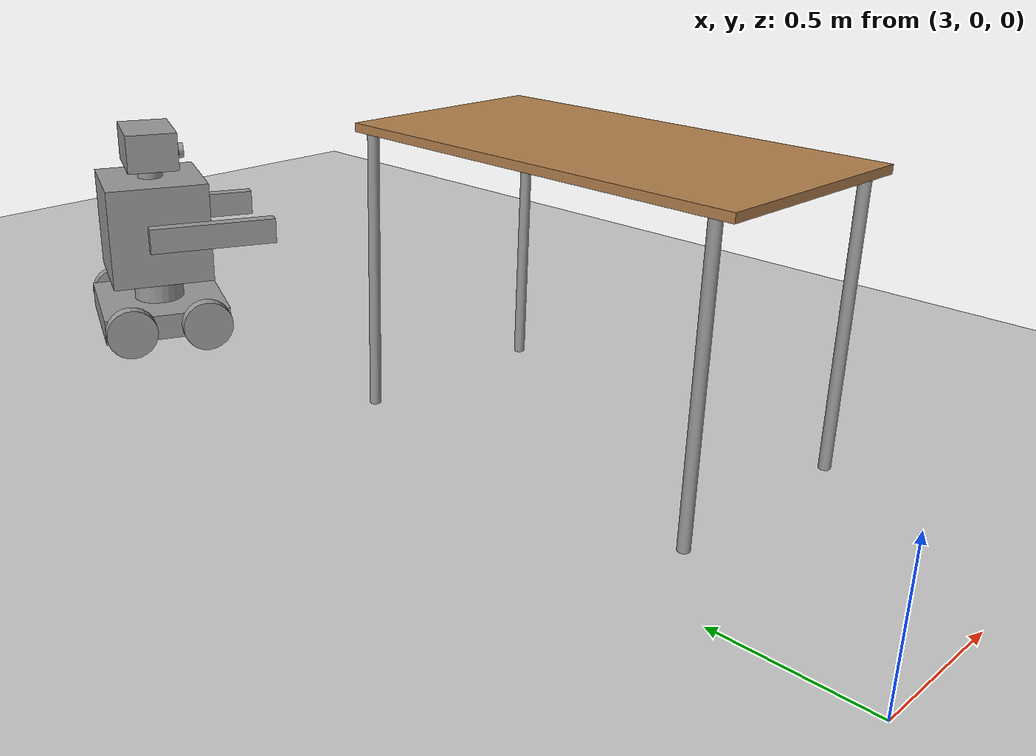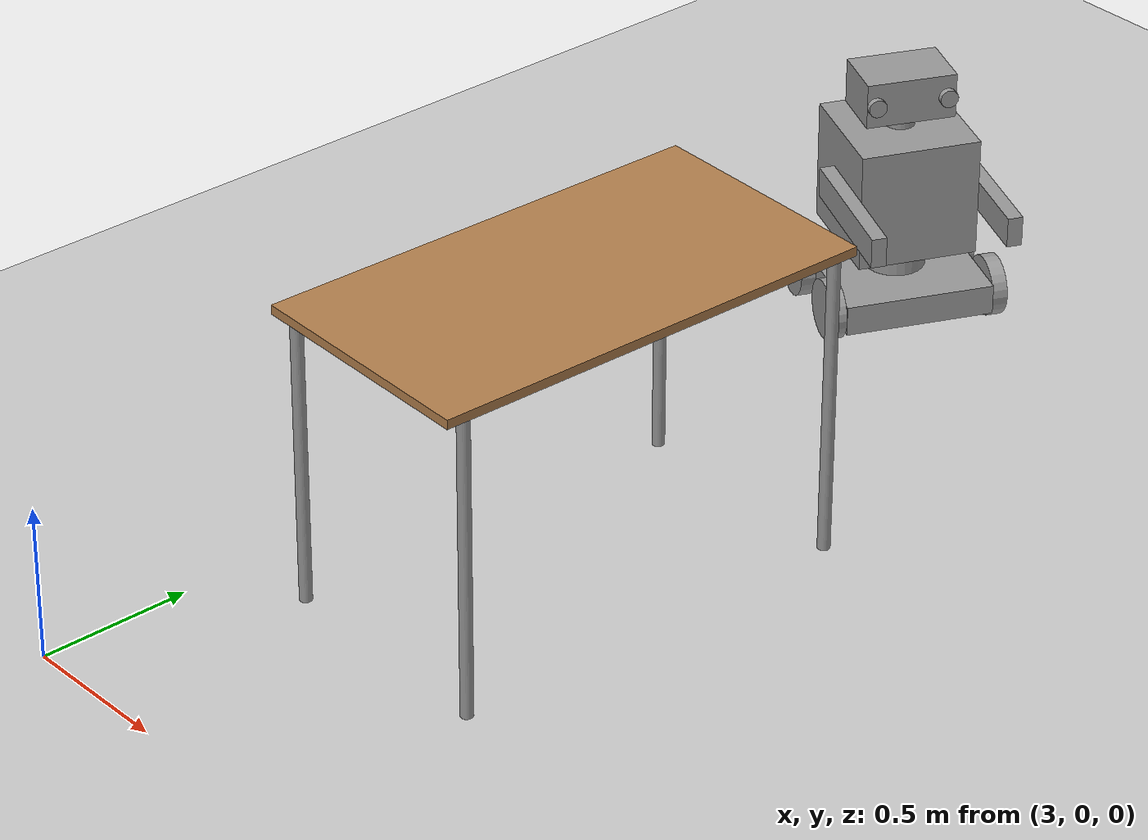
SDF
<sdf version="1.6">
 <world name="default">
  <model name="ground_plane">
   <static>1</static>
   <link name="link">
    <collision name="collision">
     <geometry><plane><normal>0 0 1</normal><size>100 100</size></plane></geometry>
     <surface>
      <contact><collide_bitmask>65535</collide_bitmask></contact>
      <friction><ode><mu>100</mu><mu2>50</mu2></ode></friction>
     </surface>
    </collision>
    <visual name="visual">
     <cast_shadows>0</cast_shadows>
     <geometry><plane><normal>0 0 1</normal><size>100 100</size></plane></geometry>
     <material>
      <script><uri>file://media/materials/scripts/gazebo.material</uri><name>Gazebo/Grey</name></script>
     </material>
    </visual>
   </link>
  </model>
  <model name="table">
   <static>1</static>
   <link name="link">
    <collision name="surface">
     <pose>0 0 1 0 -0 0</pose>
     <geometry><box><size>1.5 0.8 0.03</size></box></geometry>
     <surface><friction><ode><mu>0.6</mu><mu2>0.6</mu2></ode></friction></surface>
    </collision>
    <visual name="visual1">
     <pose>0 0 1 0 -0 0</pose>
     <geometry><box><size>1.5 0.8 0.03</size></box></geometry>
     <material>
      <script><uri>file://media/materials/scripts/gazebo.material</uri><name>Gazebo/Wood</name></script>
     </material>
    </visual>
    <collision name="front_left_leg">
     <pose>0.68 0.38 0.5 0 -0 0</pose>
     <geometry><cylinder><radius>0.02</radius><length>1</length></cylinder></geometry>
    </collision>
    <visual name="front_left_leg">
     <pose>0.68 0.38 0.5 0 -0 0</pose>
     <geometry><cylinder><radius>0.02</radius><length>1</length></cylinder></geometry>
     <material>
      <script><uri>file://media/materials/scripts/gazebo.material</uri><name>Gazebo/Grey</name></script>
     </material>
    </visual>
    <collision name="front_right_leg">
     <pose>0.68 -0.38 0.5 0 -0 0</pose>
     <geometry><cylinder><radius>0.02</radius><length>1</length></cylinder></geometry>
    </collision>
    <visual name="front_right_leg">
     <pose>0.68 -0.38 0.5 0 -0 0</pose>
     <geometry><cylinder><radius>0.02</radius><length>1</length></cylinder></geometry>
     <material>
      <script><uri>file://media/materials/scripts/gazebo.material</uri><name>Gazebo/Grey</name></script>
     </material>
    </visual>
    <collision name="back_right_leg">
     <pose>-0.68 -0.38 0.5 0 -0 0</pose>
     <geometry><cylinder><radius>0.02</radius><length>1</length></cylinder></geometry>
    </collision>
    <visual name="back_right_leg">
     <pose>-0.68 -0.38 0.5 0 -0 0</pose>
     <geometry><cylinder><radius>0.02</radius><length>1</length></cylinder></geometry>
     <material>
      <script><uri>file://media/materials/scripts/gazebo.material</uri><name>Gazebo/Grey</name></script>
     </material>
    </visual>
    <collision name="back_left_leg">
     <pose>-0.68 0.38 0.5 0 -0 0</pose>
     <geometry><cylinder><radius>0.02</radius><length>1</length></cylinder></geometry>
    </collision>
    <visual name="back_left_leg">
     <pose>-0.68 0.38 0.5 0 -0 0</pose>
     <geometry><cylinder><radius>0.02</radius><length>1</length></cylinder></geometry>
     <material>
      <script><uri>file://media/materials/scripts/gazebo.material</uri><name>Gazebo/Grey</name></script>
     </material>
    </visual>
   </link>
   <pose>3.65777 1.42031 0.001054 -0.004408 -9.2e-05 -1.59161</pose>
  </model>
  <model name="static_robot">
   <link name="link_0">
    <inertial>
     <mass>1</mass>
     <inertia>
      <ixx>0.166667</ixx>
      <ixy>0</ixy>
      <ixz>0</ixz>
      <iyy>0.166667</iyy>
      <iyz>0</iyz>
      <izz>0.166667</izz>
     </inertia>
    </inertial>
    <pose>0.002857 0.01 -0.27 0 -0 0</pose>
    <visual name="visual">
     <geometry><box><size>0.5 0.5 0.1</size></box></geometry>
     <material>
      <lighting>1</lighting>
      <script><uri>file://media/materials/scripts/gazebo.material</uri><name>Gazebo/Grey</name></script>
      <shader type="pixel"><normal_map>__default__</normal_map></shader>
      <ambient>0.3 0.3 0.3 1</ambient>
      <diffuse>0.7 0.7 0.7 1</diffuse>
      <specular>0.01 0.01 0.01 1</specular>
      <emissive>0 0 0 1</emissive>
     </material>
    </visual>
    <collision name="collision">
     <geometry><box><size>0.5 0.5 0.1</size></box></geometry>
     <surface>
      <friction>
       <ode><mu>1</mu><mu2>1</mu2><fdir1>0 0 0</fdir1><slip1>0</slip1><slip2>0</slip2></ode>
       <torsional>
        <coefficient>1</coefficient>
        <patch_radius>0</patch_radius>
        <surface_radius>0</surface_radius>
        <use_patch_radius>1</use_patch_radius>
        <ode><slip>0</slip></ode>
       </torsional>
      </friction>
      <bounce><restitution_coefficient>0</restitution_coefficient><threshold>1e+06</threshold></bounce>
      <contact>
       <collide_without_contact>0</collide_without_contact>
       <collide_without_contact_bitmask>1</collide_without_contact_bitmask>
       <collide_bitmask>1</collide_bitmask>
       <ode>
        <soft_cfm>0</soft_cfm>
        <soft_erp>0.2</soft_erp>
        <kp>1e+13</kp>
        <kd>1</kd>
        <max_vel>0.01</max_vel>
        <min_depth>0</min_depth>
       </ode>
       <bullet>
        <split_impulse>1</split_impulse>
        <split_impulse_penetration_threshold>-0.01</split_impulse_penetration_threshold>
        <soft_cfm>0</soft_cfm>
        <soft_erp>0.2</soft_erp>
        <kp>1e+13</kp>
        <kd>1</kd>
       </bullet>
      </contact>
     </surface>
    </collision>
   </link>
   <link name="link_0_0">
    <inertial>
     <mass>1</mass>
     <inertia>
      <ixx>0.166667</ixx>
      <ixy>0</ixy>
      <ixz>0</ixz>
      <iyy>0.166667</iyy>
      <iyz>0</iyz>
      <izz>0.166667</izz>
     </inertia>
    </inertial>
    <pose>0.002855 0.009847 0.087784 0.000603 -1.2e-05 0.008466</pose>
    <visual name="visual">
     <geometry><box><size>0.4 0.4 0.4</size></box></geometry>
     <material>
      <lighting>1</lighting>
      <script><uri>file://media/materials/scripts/gazebo.material</uri><name>Gazebo/Grey</name></script>
      <shader type="pixel"><normal_map>__default__</normal_map></shader>
      <ambient>0.3 0.3 0.3 1</ambient>
      <diffuse>0.7 0.7 0.7 1</diffuse>
      <specular>0.01 0.01 0.01 1</specular>
      <emissive>0 0 0 1</emissive>
     </material>
    </visual>
    <collision name="collision">
     <geometry><box><size>0.4 0.4 0.4</size></box></geometry>
     <surface>
      <friction>
       <ode><mu>1</mu><mu2>1</mu2><fdir1>0 0 0</fdir1><slip1>0</slip1><slip2>0</slip2></ode>
       <torsional>
        <coefficient>1</coefficient>
        <patch_radius>0</patch_radius>
        <surface_radius>0</surface_radius>
        <use_patch_radius>1</use_patch_radius>
        <ode><slip>0</slip></ode>
       </torsional>
      </friction>
      <bounce><restitution_coefficient>0</restitution_coefficient><threshold>1e+06</threshold></bounce>
      <contact>
       <collide_without_contact>0</collide_without_contact>
       <collide_without_contact_bitmask>1</collide_without_contact_bitmask>
       <collide_bitmask>1</collide_bitmask>
       <ode>
        <soft_cfm>0</soft_cfm>
        <soft_erp>0.2</soft_erp>
        <kp>1e+13</kp>
        <kd>1</kd>
        <max_vel>0.01</max_vel>
        <min_depth>0</min_depth>
       </ode>
       <bullet>
        <split_impulse>1</split_impulse>
        <split_impulse_penetration_threshold>-0.01</split_impulse_penetration_threshold>
        <soft_cfm>0</soft_cfm>
        <soft_erp>0.2</soft_erp>
        <kp>1e+13</kp>
        <kd>1</kd>
       </bullet>
      </contact>
     </surface>
    </collision>
   </link>
   <link name="link_0_1_clone">
    <inertial>
     <mass>1</mass>
     <inertia>
      <ixx>0.166667</ixx>
      <ixy>0</ixy>
      <ixz>0</ixz>
      <iyy>0.166667</iyy>
      <iyz>0</iyz>
      <izz>0.166667</izz>
     </inertia>
    </inertial>
    <pose>0.002853 0.009846 0.412906 4e-06 -1.2e-05 -0.006466</pose>
    <visual name="visual_0">
     <geometry><box><size>0.2 0.3 0.15</size></box></geometry>
     <material>
      <lighting>1</lighting>
      <script><uri>file://media/materials/scripts/gazebo.material</uri><name>Gazebo/Grey</name></script>
      <shader type="pixel"><normal_map>__default__</normal_map></shader>
      <ambient>0.3 0.3 0.3 1</ambient>
      <diffuse>0.7 0.7 0.7 1</diffuse>
      <specular>0.01 0.01 0.01 1</specular>
      <emissive>0 0 0 1</emissive>
     </material>
    </visual>
    <collision name="collision">
     <geometry><box><size>0.2 0.3 0.15</size></box></geometry>
     <surface>
      <friction>
       <ode><mu>1</mu><mu2>1</mu2><fdir1>0 0 0</fdir1><slip1>0</slip1><slip2>0</slip2></ode>
       <torsional>
        <coefficient>1</coefficient>
        <patch_radius>0</patch_radius>
        <surface_radius>0</surface_radius>
        <use_patch_radius>1</use_patch_radius>
        <ode><slip>0</slip></ode>
       </torsional>
      </friction>
      <bounce><restitution_coefficient>0</restitution_coefficient><threshold>1e+06</threshold></bounce>
      <contact>
       <collide_without_contact>0</collide_without_contact>
       <collide_without_contact_bitmask>1</collide_without_contact_bitmask>
       <collide_bitmask>1</collide_bitmask>
       <ode>
        <soft_cfm>0</soft_cfm>
        <soft_erp>0.2</soft_erp>
        <kp>1e+13</kp>
        <kd>1</kd>
        <max_vel>0.01</max_vel>
        <min_depth>0</min_depth>
       </ode>
       <bullet>
        <split_impulse>1</split_impulse>
        <split_impulse_penetration_threshold>-0.01</split_impulse_penetration_threshold>
        <soft_cfm>0</soft_cfm>
        <soft_erp>0.2</soft_erp>
        <kp>1e+13</kp>
        <kd>1</kd>
       </bullet>
      </contact>
     </surface>
    </collision>
   </link>
   <link name="link_1_clone">
    <inertial>
     <mass>1</mass>
     <inertia><ixx>0.145833</ixx><ixy>0</ixy><ixz>0</ixz><iyy>0.145833</iyy><iyz>0</iyz><izz>0.125</izz></inertia>
    </inertial>
    <pose>-0.147143 0.28508 -0.27004 0 -0 0</pose>
    <visual name="visual">
     <pose>0 0 0 1.57 -0 0</pose>
     <geometry><cylinder><radius>0.1</radius><length>0.05</length></cylinder></geometry>
     <material>
      <lighting>1</lighting>
      <script><uri>file://media/materials/scripts/gazebo.material</uri><name>Gazebo/Grey</name></script>
      <shader type="pixel"><normal_map>__default__</normal_map></shader>
      <ambient>0.3 0.3 0.3 1</ambient>
      <diffuse>0.7 0.7 0.7 1</diffuse>
      <specular>0.01 0.01 0.01 1</specular>
      <emissive>0 0 0 1</emissive>
     </material>
    </visual>
    <collision name="collision">
     <pose>0 0 0 1.57 -0 0</pose>
     <geometry><cylinder><radius>0.1</radius><length>0.05</length></cylinder></geometry>
     <surface>
      <friction>
       <ode><mu>1</mu><mu2>1</mu2><fdir1>0 0 0</fdir1><slip1>0</slip1><slip2>0</slip2></ode>
       <torsional>
        <coefficient>1</coefficient>
        <patch_radius>0</patch_radius>
        <surface_radius>0</surface_radius>
        <use_patch_radius>1</use_patch_radius>
        <ode><slip>0</slip></ode>
       </torsional>
      </friction>
      <bounce><restitution_coefficient>0</restitution_coefficient><threshold>1e+06</threshold></bounce>
      <contact>
       <collide_without_contact>0</collide_without_contact>
       <collide_without_contact_bitmask>1</collide_without_contact_bitmask>
       <collide_bitmask>1</collide_bitmask>
       <ode>
        <soft_cfm>0</soft_cfm>
        <soft_erp>0.2</soft_erp>
        <kp>1e+13</kp>
        <kd>1</kd>
        <max_vel>0.01</max_vel>
        <min_depth>0</min_depth>
       </ode>
       <bullet>
        <split_impulse>1</split_impulse>
        <split_impulse_penetration_threshold>-0.01</split_impulse_penetration_threshold>
        <soft_cfm>0</soft_cfm>
        <soft_erp>0.2</soft_erp>
        <kp>1e+13</kp>
        <kd>1</kd>
       </bullet>
      </contact>
     </surface>
    </collision>
   </link>
   <link name="link_1_clone_clone_0">
    <inertial>
     <mass>1</mass>
     <inertia><ixx>0.145833</ixx><ixy>0</ixy><ixz>0</ixz><iyy>0.145833</iyy><iyz>0</iyz><izz>0.125</izz></inertia>
    </inertial>
    <pose>0.152857 -0.26508 -0.27004 0 -0 0</pose>
    <visual name="visual">
     <pose>0 0 0 1.57 -0 0</pose>
     <geometry><cylinder><radius>0.1</radius><length>0.05</length></cylinder></geometry>
     <material>
      <lighting>1</lighting>
      <script><uri>file://media/materials/scripts/gazebo.material</uri><name>Gazebo/Grey</name></script>
      <shader type="pixel"><normal_map>__default__</normal_map></shader>
      <ambient>0.3 0.3 0.3 1</ambient>
      <diffuse>0.7 0.7 0.7 1</diffuse>
      <specular>0.01 0.01 0.01 1</specular>
      <emissive>0 0 0 1</emissive>
     </material>
    </visual>
    <collision name="collision">
     <pose>0 0 0 1.57 -0 0</pose>
     <geometry><cylinder><radius>0.1</radius><length>0.05</length></cylinder></geometry>
     <surface>
      <friction>
       <ode><mu>1</mu><mu2>1</mu2><fdir1>0 0 0</fdir1><slip1>0</slip1><slip2>0</slip2></ode>
       <torsional>
        <coefficient>1</coefficient>
        <patch_radius>0</patch_radius>
        <surface_radius>0</surface_radius>
        <use_patch_radius>1</use_patch_radius>
        <ode><slip>0</slip></ode>
       </torsional>
      </friction>
      <bounce><restitution_coefficient>0</restitution_coefficient><threshold>1e+06</threshold></bounce>
      <contact>
       <collide_without_contact>0</collide_without_contact>
       <collide_without_contact_bitmask>1</collide_without_contact_bitmask>
       <collide_bitmask>1</collide_bitmask>
       <ode>
        <soft_cfm>0</soft_cfm>
        <soft_erp>0.2</soft_erp>
        <kp>1e+13</kp>
        <kd>1</kd>
        <max_vel>0.01</max_vel>
        <min_depth>0</min_depth>
       </ode>
       <bullet>
        <split_impulse>1</split_impulse>
        <split_impulse_penetration_threshold>-0.01</split_impulse_penetration_threshold>
        <soft_cfm>0</soft_cfm>
        <soft_erp>0.2</soft_erp>
        <kp>1e+13</kp>
        <kd>1</kd>
       </bullet>
      </contact>
     </surface>
    </collision>
   </link>
   <link name="link_1_clone_clone_1">
    <inertial>
     <mass>1</mass>
     <inertia><ixx>0.145833</ixx><ixy>0</ixy><ixz>0</ixz><iyy>0.145833</iyy><iyz>0</iyz><izz>0.125</izz></inertia>
    </inertial>
    <pose>-0.147143 -0.26508 -0.27004 0 -0 0</pose>
    <visual name="visual">
     <pose>0 0 0 1.57 -0 0</pose>
     <geometry><cylinder><radius>0.1</radius><length>0.05</length></cylinder></geometry>
     <material>
      <lighting>1</lighting>
      <script><uri>file://media/materials/scripts/gazebo.material</uri><name>Gazebo/Grey</name></script>
      <shader type="pixel"><normal_map>__default__</normal_map></shader>
      <ambient>0.3 0.3 0.3 1</ambient>
      <diffuse>0.7 0.7 0.7 1</diffuse>
      <specular>0.01 0.01 0.01 1</specular>
      <emissive>0 0 0 1</emissive>
     </material>
    </visual>
    <collision name="collision">
     <pose>0 0 0 1.57 -0 0</pose>
     <geometry><cylinder><radius>0.1</radius><length>0.05</length></cylinder></geometry>
     <surface>
      <friction>
       <ode><mu>1</mu><mu2>1</mu2><fdir1>0 0 0</fdir1><slip1>0</slip1><slip2>0</slip2></ode>
       <torsional>
        <coefficient>1</coefficient>
        <patch_radius>0</patch_radius>
        <surface_radius>0</surface_radius>
        <use_patch_radius>1</use_patch_radius>
        <ode><slip>0</slip></ode>
       </torsional>
      </friction>
      <bounce><restitution_coefficient>0</restitution_coefficient><threshold>1e+06</threshold></bounce>
      <contact>
       <collide_without_contact>0</collide_without_contact>
       <collide_without_contact_bitmask>1</collide_without_contact_bitmask>
       <collide_bitmask>1</collide_bitmask>
       <ode>
        <soft_cfm>0</soft_cfm>
        <soft_erp>0.2</soft_erp>
        <kp>1e+13</kp>
        <kd>1</kd>
        <max_vel>0.01</max_vel>
        <min_depth>0</min_depth>
       </ode>
       <bullet>
        <split_impulse>1</split_impulse>
        <split_impulse_penetration_threshold>-0.01</split_impulse_penetration_threshold>
        <soft_cfm>0</soft_cfm>
        <soft_erp>0.2</soft_erp>
        <kp>1e+13</kp>
        <kd>1</kd>
       </bullet>
      </contact>
     </surface>
    </collision>
   </link>
   <link name="link_1_clone_clone_2">
    <inertial>
     <mass>1</mass>
     <inertia><ixx>0.145833</ixx><ixy>0</ixy><ixz>0</ixz><iyy>0.145833</iyy><iyz>0</iyz><izz>0.125</izz></inertia>
    </inertial>
    <pose>0.152857 0.28508 -0.27004 0 -0 0</pose>
    <visual name="visual">
     <pose>0 0 0 1.57 -0 0</pose>
     <geometry><cylinder><radius>0.1</radius><length>0.05</length></cylinder></geometry>
     <material>
      <lighting>1</lighting>
      <script><uri>file://media/materials/scripts/gazebo.material</uri><name>Gazebo/Grey</name></script>
      <shader type="pixel"><normal_map>__default__</normal_map></shader>
      <ambient>0.3 0.3 0.3 1</ambient>
      <diffuse>0.7 0.7 0.7 1</diffuse>
      <specular>0.01 0.01 0.01 1</specular>
      <emissive>0 0 0 1</emissive>
     </material>
    </visual>
    <collision name="collision">
     <pose>0 0 0 1.57 -0 0</pose>
     <geometry><cylinder><radius>0.1</radius><length>0.05</length></cylinder></geometry>
     <surface>
      <friction>
       <ode><mu>1</mu><mu2>1</mu2><fdir1>0 0 0</fdir1><slip1>0</slip1><slip2>0</slip2></ode>
       <torsional>
        <coefficient>1</coefficient>
        <patch_radius>0</patch_radius>
        <surface_radius>0</surface_radius>
        <use_patch_radius>1</use_patch_radius>
        <ode><slip>0</slip></ode>
       </torsional>
      </friction>
      <bounce><restitution_coefficient>0</restitution_coefficient><threshold>1e+06</threshold></bounce>
      <contact>
       <collide_without_contact>0</collide_without_contact>
       <collide_without_contact_bitmask>1</collide_without_contact_bitmask>
       <collide_bitmask>1</collide_bitmask>
       <ode>
        <soft_cfm>0</soft_cfm>
        <soft_erp>0.2</soft_erp>
        <kp>1e+13</kp>
        <kd>1</kd>
        <max_vel>0.01</max_vel>
        <min_depth>0</min_depth>
       </ode>
       <bullet>
        <split_impulse>1</split_impulse>
        <split_impulse_penetration_threshold>-0.01</split_impulse_penetration_threshold>
        <soft_cfm>0</soft_cfm>
        <soft_erp>0.2</soft_erp>
        <kp>1e+13</kp>
        <kd>1</kd>
       </bullet>
      </contact>
     </surface>
    </collision>
   </link>
   <link name="link_2_clone_clone_0_clone">
    <inertial>
     <mass>1</mass>
     <inertia>
      <ixx>0.166667</ixx>
      <ixy>0</ixy>
      <ixz>0</ixz>
      <iyy>0.166667</iyy>
      <iyz>0</iyz>
      <izz>0.166667</izz>
     </inertia>
    </inertial>
    <pose>0.200922 0.238963 0.087787 2e-06 -6e-06 -0.003233</pose>
    <visual name="visual">
     <pose>0 0 0 0 1.57 0</pose>
     <geometry><box><size>0.1 0.05 0.5</size></box></geometry>
     <material>
      <lighting>1</lighting>
      <script><uri>file://media/materials/scripts/gazebo.material</uri><name>Gazebo/Grey</name></script>
      <shader type="pixel"><normal_map>__default__</normal_map></shader>
      <ambient>0.3 0.3 0.3 1</ambient>
      <diffuse>0.7 0.7 0.7 1</diffuse>
      <specular>0.01 0.01 0.01 1</specular>
      <emissive>0 0 0 1</emissive>
     </material>
    </visual>
    <collision name="collision">
     <pose>0 0 0 0 1.57 0</pose>
     <geometry><box><size>0.1 0.05 0.5</size></box></geometry>
     <surface>
      <friction>
       <ode><mu>1</mu><mu2>1</mu2><fdir1>0 0 0</fdir1><slip1>0</slip1><slip2>0</slip2></ode>
       <torsional>
        <coefficient>1</coefficient>
        <patch_radius>0</patch_radius>
        <surface_radius>0</surface_radius>
        <use_patch_radius>1</use_patch_radius>
        <ode><slip>0</slip></ode>
       </torsional>
      </friction>
      <bounce><restitution_coefficient>0</restitution_coefficient><threshold>1e+06</threshold></bounce>
      <contact>
       <collide_without_contact>0</collide_without_contact>
       <collide_without_contact_bitmask>1</collide_without_contact_bitmask>
       <collide_bitmask>1</collide_bitmask>
       <ode>
        <soft_cfm>0</soft_cfm>
        <soft_erp>0.2</soft_erp>
        <kp>1e+13</kp>
        <kd>1</kd>
        <max_vel>0.01</max_vel>
        <min_depth>0</min_depth>
       </ode>
       <bullet>
        <split_impulse>1</split_impulse>
        <split_impulse_penetration_threshold>-0.01</split_impulse_penetration_threshold>
        <soft_cfm>0</soft_cfm>
        <soft_erp>0.2</soft_erp>
        <kp>1e+13</kp>
        <kd>1</kd>
       </bullet>
      </contact>
     </surface>
    </collision>
   </link>
   <link name="link_2_clone_clone_0_clone_clone">
    <inertial>
     <mass>1</mass>
     <inertia>
      <ixx>0.166667</ixx>
      <ixy>0</ixy>
      <ixz>0</ixz>
      <iyy>0.166667</iyy>
      <iyz>0</iyz>
      <izz>0.166667</izz>
     </inertia>
    </inertial>
    <pose>0.204785 -0.21725 0.087785 4e-06 -1.2e-05 -0.006466</pose>
    <visual name="visual">
     <pose>0 0 0 0 1.57 0</pose>
     <geometry><box><size>0.1 0.05 0.5</size></box></geometry>
     <material>
      <lighting>1</lighting>
      <script><uri>file://media/materials/scripts/gazebo.material</uri><name>Gazebo/Grey</name></script>
      <shader type="pixel"><normal_map>__default__</normal_map></shader>
      <ambient>0.3 0.3 0.3 1</ambient>
      <diffuse>0.7 0.7 0.7 1</diffuse>
      <specular>0.01 0.01 0.01 1</specular>
      <emissive>0 0 0 1</emissive>
     </material>
    </visual>
    <collision name="collision">
     <pose>0 0 0 0 1.57 0</pose>
     <geometry><box><size>0.1 0.05 0.5</size></box></geometry>
     <surface>
      <friction>
       <ode><mu>1</mu><mu2>1</mu2><fdir1>0 0 0</fdir1><slip1>0</slip1><slip2>0</slip2></ode>
       <torsional>
        <coefficient>1</coefficient>
        <patch_radius>0</patch_radius>
        <surface_radius>0</surface_radius>
        <use_patch_radius>1</use_patch_radius>
        <ode><slip>0</slip></ode>
       </torsional>
      </friction>
      <bounce><restitution_coefficient>0</restitution_coefficient><threshold>1e+06</threshold></bounce>
      <contact>
       <collide_without_contact>0</collide_without_contact>
       <collide_without_contact_bitmask>1</collide_without_contact_bitmask>
       <collide_bitmask>1</collide_bitmask>
       <ode>
        <soft_cfm>0</soft_cfm>
        <soft_erp>0.2</soft_erp>
        <kp>1e+13</kp>
        <kd>1</kd>
        <max_vel>0.01</max_vel>
        <min_depth>0</min_depth>
       </ode>
       <bullet>
        <split_impulse>1</split_impulse>
        <split_impulse_penetration_threshold>-0.01</split_impulse_penetration_threshold>
        <soft_cfm>0</soft_cfm>
        <soft_erp>0.2</soft_erp>
        <kp>1e+13</kp>
        <kd>1</kd>
       </bullet>
      </contact>
     </surface>
    </collision>
   </link>
   <link name="link_3_clone">
    <inertial>
     <mass>1</mass>
     <inertia><ixx>0.145833</ixx><ixy>0</ixy><ixz>0</ixz><iyy>0.145833</iyy><iyz>0</iyz><izz>0.125</izz></inertia>
     <pose>0 0 2 0 -0 0</pose>
    </inertial>
    <pose>0.002857 0.01 -0.17 0 -0 0</pose>
    <visual name="visual">
     <geometry><cylinder><radius>0.1</radius><length>0.1</length></cylinder></geometry>
     <material>
      <lighting>1</lighting>
      <script><uri>file://media/materials/scripts/gazebo.material</uri><name>Gazebo/Grey</name></script>
      <shader type="pixel"><normal_map>__default__</normal_map></shader>
      <ambient>0.3 0.3 0.3 1</ambient>
      <diffuse>0.7 0.7 0.7 1</diffuse>
      <specular>0.01 0.01 0.01 1</specular>
      <emissive>0 0 0 1</emissive>
     </material>
    </visual>
    <collision name="collision">
     <geometry><cylinder><radius>0.1</radius><length>0.1</length></cylinder></geometry>
     <surface>
      <friction>
       <ode><mu>1</mu><mu2>1</mu2><fdir1>0 0 0</fdir1><slip1>0</slip1><slip2>0</slip2></ode>
       <torsional>
        <coefficient>1</coefficient>
        <patch_radius>0</patch_radius>
        <surface_radius>0</surface_radius>
        <use_patch_radius>1</use_patch_radius>
        <ode><slip>0</slip></ode>
       </torsional>
      </friction>
      <bounce><restitution_coefficient>0</restitution_coefficient><threshold>1e+06</threshold></bounce>
      <contact>
       <collide_without_contact>0</collide_without_contact>
       <collide_without_contact_bitmask>1</collide_without_contact_bitmask>
       <collide_bitmask>1</collide_bitmask>
       <ode>
        <soft_cfm>0</soft_cfm>
        <soft_erp>0.2</soft_erp>
        <kp>1e+13</kp>
        <kd>1</kd>
        <max_vel>0.01</max_vel>
        <min_depth>0</min_depth>
       </ode>
       <bullet>
        <split_impulse>1</split_impulse>
        <split_impulse_penetration_threshold>-0.01</split_impulse_penetration_threshold>
        <soft_cfm>0</soft_cfm>
        <soft_erp>0.2</soft_erp>
        <kp>1e+13</kp>
        <kd>1</kd>
       </bullet>
      </contact>
     </surface>
    </collision>
   </link>
   <link name="link_3_clone_clone">
    <inertial>
     <mass>1</mass>
     <inertia><ixx>0.145833</ixx><ixy>0</ixy><ixz>0</ixz><iyy>0.145833</iyy><iyz>0</iyz><izz>0.125</izz></inertia>
     <pose>0 0 2 0 -0 0</pose>
    </inertial>
    <pose>0.002854 0.009847 0.312905 2e-06 -6e-06 -0.003233</pose>
    <visual name="visual">
     <geometry><cylinder><radius>0.05</radius><length>0.05</length></cylinder></geometry>
     <material>
      <lighting>1</lighting>
      <script><uri>file://media/materials/scripts/gazebo.material</uri><name>Gazebo/Grey</name></script>
      <shader type="pixel"><normal_map>__default__</normal_map></shader>
      <ambient>0.3 0.3 0.3 1</ambient>
      <diffuse>0.7 0.7 0.7 1</diffuse>
      <specular>0.01 0.01 0.01 1</specular>
      <emissive>0 0 0 1</emissive>
     </material>
    </visual>
    <collision name="collision">
     <geometry><cylinder><radius>0.05</radius><length>0.05</length></cylinder></geometry>
     <surface>
      <friction>
       <ode><mu>1</mu><mu2>1</mu2><fdir1>0 0 0</fdir1><slip1>0</slip1><slip2>0</slip2></ode>
       <torsional>
        <coefficient>1</coefficient>
        <patch_radius>0</patch_radius>
        <surface_radius>0</surface_radius>
        <use_patch_radius>1</use_patch_radius>
        <ode><slip>0</slip></ode>
       </torsional>
      </friction>
      <bounce><restitution_coefficient>0</restitution_coefficient><threshold>1e+06</threshold></bounce>
      <contact>
       <collide_without_contact>0</collide_without_contact>
       <collide_without_contact_bitmask>1</collide_without_contact_bitmask>
       <collide_bitmask>1</collide_bitmask>
       <ode>
        <soft_cfm>0</soft_cfm>
        <soft_erp>0.2</soft_erp>
        <kp>1e+13</kp>
        <kd>1</kd>
        <max_vel>0.01</max_vel>
        <min_depth>0</min_depth>
       </ode>
       <bullet>
        <split_impulse>1</split_impulse>
        <split_impulse_penetration_threshold>-0.01</split_impulse_penetration_threshold>
        <soft_cfm>0</soft_cfm>
        <soft_erp>0.2</soft_erp>
        <kp>1e+13</kp>
        <kd>1</kd>
       </bullet>
      </contact>
     </surface>
    </collision>
   </link>
   <link name="link_3_clone_clone_clone">
    <inertial>
     <mass>1</mass>
     <inertia><ixx>0.145833</ixx><ixy>0</ixy><ixz>0</ixz><iyy>0.145833</iyy><iyz>0</iyz><izz>0.125</izz></inertia>
     <pose>0 0 2 0 -0 0</pose>
    </inertial>
    <pose>0.113069 -0.110801 0.412907 0 -1.2e-05 -0.006466</pose>
    <visual name="visual">
     <pose>0 0 0 0 1.57 0</pose>
     <geometry><cylinder><radius>0.03</radius><length>0.02</length></cylinder></geometry>
     <material>
      <lighting>1</lighting>
      <script><uri>file://media/materials/scripts/gazebo.material</uri><name>Gazebo/Grey</name></script>
      <shader type="pixel"><normal_map>__default__</normal_map></shader>
      <ambient>0.3 0.3 0.3 1</ambient>
      <diffuse>0.7 0.7 0.7 1</diffuse>
      <specular>0.01 0.01 0.01 1</specular>
      <emissive>0 0 0 1</emissive>
     </material>
    </visual>
    <collision name="collision">
     <pose>0 0 0 0 1.57 0</pose>
     <geometry><cylinder><radius>0.03</radius><length>0.02</length></cylinder></geometry>
     <surface>
      <friction>
       <ode><mu>1</mu><mu2>1</mu2><fdir1>0 0 0</fdir1><slip1>0</slip1><slip2>0</slip2></ode>
       <torsional>
        <coefficient>1</coefficient>
        <patch_radius>0</patch_radius>
        <surface_radius>0</surface_radius>
        <use_patch_radius>1</use_patch_radius>
        <ode><slip>0</slip></ode>
       </torsional>
      </friction>
      <bounce><restitution_coefficient>0</restitution_coefficient><threshold>1e+06</threshold></bounce>
      <contact>
       <collide_without_contact>0</collide_without_contact>
       <collide_without_contact_bitmask>1</collide_without_contact_bitmask>
       <collide_bitmask>1</collide_bitmask>
       <ode>
        <soft_cfm>0</soft_cfm>
        <soft_erp>0.2</soft_erp>
        <kp>1e+13</kp>
        <kd>1</kd>
        <max_vel>0.01</max_vel>
        <min_depth>0</min_depth>
       </ode>
       <bullet>
        <split_impulse>1</split_impulse>
        <split_impulse_penetration_threshold>-0.01</split_impulse_penetration_threshold>
        <soft_cfm>0</soft_cfm>
        <soft_erp>0.2</soft_erp>
        <kp>1e+13</kp>
        <kd>1</kd>
       </bullet>
      </contact>
     </surface>
    </collision>
   </link>
   <link name="link_3_clone_clone_clone_clone">
    <inertial>
     <mass>1</mass>
     <inertia><ixx>0.145833</ixx><ixy>0</ixy><ixz>0</ixz><iyy>0.145833</iyy><iyz>0</iyz><izz>0.125</izz></inertia>
     <pose>0 0 2 0 -0 0</pose>
    </inertial>
    <pose>0.113944 0.129746 0.412907 2e-06 -1.8e-05 -0.009699</pose>
    <visual name="visual">
     <pose>0 0 0 0 1.57 0</pose>
     <geometry><cylinder><radius>0.03</radius><length>0.02</length></cylinder></geometry>
     <material>
      <lighting>1</lighting>
      <script><uri>file://media/materials/scripts/gazebo.material</uri><name>Gazebo/Grey</name></script>
      <shader type="pixel"><normal_map>__default__</normal_map></shader>
      <ambient>0.3 0.3 0.3 1</ambient>
      <diffuse>0.7 0.7 0.7 1</diffuse>
      <specular>0.01 0.01 0.01 1</specular>
      <emissive>0 0 0 1</emissive>
     </material>
    </visual>
    <collision name="collision">
     <pose>0 0 0 0 1.57 0</pose>
     <geometry><cylinder><radius>0.03</radius><length>0.02</length></cylinder></geometry>
     <surface>
      <friction>
       <ode><mu>1</mu><mu2>1</mu2><fdir1>0 0 0</fdir1><slip1>0</slip1><slip2>0</slip2></ode>
       <torsional>
        <coefficient>1</coefficient>
        <patch_radius>0</patch_radius>
        <surface_radius>0</surface_radius>
        <use_patch_radius>1</use_patch_radius>
        <ode><slip>0</slip></ode>
       </torsional>
      </friction>
      <bounce><restitution_coefficient>0</restitution_coefficient><threshold>1e+06</threshold></bounce>
      <contact>
       <collide_without_contact>0</collide_without_contact>
       <collide_without_contact_bitmask>1</collide_without_contact_bitmask>
       <collide_bitmask>1</collide_bitmask>
       <ode>
        <soft_cfm>0</soft_cfm>
        <soft_erp>0.2</soft_erp>
        <kp>1e+13</kp>
        <kd>1</kd>
        <max_vel>0.01</max_vel>
        <min_depth>0</min_depth>
       </ode>
       <bullet>
        <split_impulse>1</split_impulse>
        <split_impulse_penetration_threshold>-0.01</split_impulse_penetration_threshold>
        <soft_cfm>0</soft_cfm>
        <soft_erp>0.2</soft_erp>
        <kp>1e+13</kp>
        <kd>1</kd>
       </bullet>
      </contact>
     </surface>
    </collision>
   </link>
   <joint name="link_0_0_JOINT_0" type="revolute">
    <parent>link_0_0</parent>
    <child>link_2_clone_clone_0_clone_clone</child>
    <pose>-0.2 0 0 0 -0 0</pose>
    <axis>
     <xyz>0 1 0</xyz>
     <use_parent_model_frame>0</use_parent_model_frame>
     <limit>
      <lower>-1.79769e+308</lower>
      <upper>1.79769e+308</upper>
      <effort>-1</effort>
      <velocity>-1</velocity>
     </limit>
     <dynamics>
      <spring_reference>0</spring_reference>
      <spring_stiffness>0</spring_stiffness>
      <damping>0</damping>
      <friction>0</friction>
     </dynamics>
    </axis>
    <physics>
     <ode><limit><cfm>0</cfm><erp>0.2</erp></limit><suspension><cfm>0</cfm><erp>0.2</erp></suspension></ode>
    </physics>
   </joint>
   <joint name="link_0_0_JOINT_1" type="revolute">
    <parent>link_0_0</parent>
    <child>link_2_clone_clone_0_clone</child>
    <pose>-0.2 0 0 0 -0 0</pose>
    <axis>
     <xyz>0 -1 0</xyz>
     <use_parent_model_frame>0</use_parent_model_frame>
     <limit>
      <lower>-1.79769e+308</lower>
      <upper>1.79769e+308</upper>
      <effort>-1</effort>
      <velocity>-1</velocity>
     </limit>
     <dynamics>
      <spring_reference>0</spring_reference>
      <spring_stiffness>0</spring_stiffness>
      <damping>0</damping>
      <friction>0</friction>
     </dynamics>
    </axis>
    <physics>
     <ode><limit><cfm>0</cfm><erp>0.2</erp></limit><suspension><cfm>0</cfm><erp>0.2</erp></suspension></ode>
    </physics>
   </joint>
   <joint name="link_0_0_JOINT_3" type="revolute">
    <parent>link_0_0</parent>
    <child>link_3_clone_clone</child>
    <axis>
     <xyz>0 0 1</xyz>
     <use_parent_model_frame>0</use_parent_model_frame>
     <limit>
      <lower>-1.79769e+308</lower>
      <upper>1.79769e+308</upper>
      <effort>-1</effort>
      <velocity>-1</velocity>
     </limit>
     <dynamics>
      <spring_reference>0</spring_reference>
      <spring_stiffness>0</spring_stiffness>
      <damping>0</damping>
      <friction>0</friction>
     </dynamics>
    </axis>
    <physics>
     <ode><limit><cfm>0</cfm><erp>0.2</erp></limit><suspension><cfm>0</cfm><erp>0.2</erp></suspension></ode>
    </physics>
   </joint>
   <joint name="link_0_1_clone_JOINT_6" type="fixed">
    <parent>link_0_1_clone</parent>
    <child>link_3_clone_clone_clone</child>
    <pose>0 0 0 0 -0.01 0</pose>
    <physics>
     <ode><limit><cfm>0</cfm><erp>0.2</erp></limit><suspension><cfm>0</cfm><erp>0.2</erp></suspension></ode>
    </physics>
   </joint>
   <joint name="link_0_1_clone_JOINT_7" type="fixed">
    <parent>link_0_1_clone</parent>
    <child>link_3_clone_clone_clone_clone</child>
    <physics>
     <ode><limit><cfm>0</cfm><erp>0.2</erp></limit><suspension><cfm>0</cfm><erp>0.2</erp></suspension></ode>
    </physics>
   </joint>
   <joint name="link_0_JOINT_0" type="revolute">
    <parent>link_0</parent>
    <child>link_1_clone_clone_0</child>
    <axis>
     <xyz>0 1 0</xyz>
     <use_parent_model_frame>0</use_parent_model_frame>
     <limit>
      <lower>-1.79769e+308</lower>
      <upper>1.79769e+308</upper>
      <effort>-1</effort>
      <velocity>-1</velocity>
     </limit>
     <dynamics>
      <spring_reference>0</spring_reference>
      <spring_stiffness>0</spring_stiffness>
      <damping>0</damping>
      <friction>0</friction>
     </dynamics>
    </axis>
    <physics>
     <ode><limit><cfm>0</cfm><erp>0.2</erp></limit><suspension><cfm>0</cfm><erp>0.2</erp></suspension></ode>
    </physics>
   </joint>
   <joint name="link_0_JOINT_1" type="revolute">
    <parent>link_0</parent>
    <child>link_1_clone_clone_1</child>
    <axis>
     <xyz>0 1 0</xyz>
     <use_parent_model_frame>0</use_parent_model_frame>
     <limit>
      <lower>-1.79769e+308</lower>
      <upper>1.79769e+308</upper>
      <effort>-1</effort>
      <velocity>-1</velocity>
     </limit>
     <dynamics>
      <spring_reference>0</spring_reference>
      <spring_stiffness>0</spring_stiffness>
      <damping>0</damping>
      <friction>0</friction>
     </dynamics>
    </axis>
    <physics>
     <ode><limit><cfm>0</cfm><erp>0.2</erp></limit><suspension><cfm>0</cfm><erp>0.2</erp></suspension></ode>
    </physics>
   </joint>
   <joint name="link_0_JOINT_2" type="revolute">
    <parent>link_0</parent>
    <child>link_1_clone_clone_2</child>
    <axis>
     <xyz>-0 -1 -0</xyz>
     <use_parent_model_frame>0</use_parent_model_frame>
     <limit>
      <lower>-1.79769e+308</lower>
      <upper>1.79769e+308</upper>
      <effort>-1</effort>
      <velocity>-1</velocity>
     </limit>
     <dynamics>
      <spring_reference>0</spring_reference>
      <spring_stiffness>0</spring_stiffness>
      <damping>0</damping>
      <friction>0</friction>
     </dynamics>
    </axis>
    <physics>
     <ode><limit><cfm>0</cfm><erp>0.2</erp></limit><suspension><cfm>0</cfm><erp>0.2</erp></suspension></ode>
    </physics>
   </joint>
   <joint name="link_0_JOINT_3" type="revolute">
    <parent>link_0</parent>
    <child>link_1_clone</child>
    <axis>
     <xyz>-0 -1 -0</xyz>
     <use_parent_model_frame>0</use_parent_model_frame>
     <limit>
      <lower>-1.79769e+308</lower>
      <upper>1.79769e+308</upper>
      <effort>-1</effort>
      <velocity>-1</velocity>
     </limit>
     <dynamics>
      <spring_reference>0</spring_reference>
      <spring_stiffness>0</spring_stiffness>
      <damping>0</damping>
      <friction>0</friction>
     </dynamics>
    </axis>
    <physics>
     <ode><limit><cfm>0</cfm><erp>0.2</erp></limit><suspension><cfm>0</cfm><erp>0.2</erp></suspension></ode>
    </physics>
   </joint>
   <joint name="link_0_JOINT_5" type="revolute">
    <parent>link_0</parent>
    <child>link_3_clone</child>
    <pose>0 0 -0.1 0 -0 0</pose>
    <axis>
     <xyz>0 0 1</xyz>
     <use_parent_model_frame>0</use_parent_model_frame>
     <limit>
      <lower>-1.79769e+308</lower>
      <upper>1.79769e+308</upper>
      <effort>-1</effort>
      <velocity>-1</velocity>
     </limit>
     <dynamics>
      <spring_reference>0</spring_reference>
      <spring_stiffness>0</spring_stiffness>
      <damping>0</damping>
      <friction>0</friction>
     </dynamics>
    </axis>
    <physics>
     <ode><limit><cfm>0</cfm><erp>0.2</erp></limit><suspension><cfm>0</cfm><erp>0.2</erp></suspension></ode>
    </physics>
   </joint>
   <joint name="link_3_clone_JOINT_4" type="revolute">
    <parent>link_3_clone</parent>
    <child>link_0_0</child>
    <axis>
     <xyz>0 0 1</xyz>
     <use_parent_model_frame>0</use_parent_model_frame>
     <limit>
      <lower>-1.79769e+308</lower>
      <upper>1.79769e+308</upper>
      <effort>-1</effort>
      <velocity>-1</velocity>
     </limit>
     <dynamics>
      <spring_reference>0</spring_reference>
      <spring_stiffness>0</spring_stiffness>
      <damping>0</damping>
      <friction>0</friction>
     </dynamics>
    </axis>
    <physics>
     <ode><limit><cfm>0</cfm><erp>0.2</erp></limit><suspension><cfm>0</cfm><erp>0.2</erp></suspension></ode>
    </physics>
   </joint>
   <joint name="link_3_clone_clone_JOINT_5" type="revolute">
    <parent>link_3_clone_clone</parent>
    <child>link_0_1_clone</child>
    <axis>
     <xyz>0 0 1</xyz>
     <use_parent_model_frame>0</use_parent_model_frame>
     <limit>
      <lower>-1.79769e+308</lower>
      <upper>1.79769e+308</upper>
      <effort>-1</effort>
      <velocity>-1</velocity>
     </limit>
     <dynamics>
      <spring_reference>0</spring_reference>
      <spring_stiffness>0</spring_stiffness>
      <damping>0</damping>
      <friction>0</friction>
     </dynamics>
    </axis>
    <physics>
     <ode><limit><cfm>0</cfm><erp>0.2</erp></limit><suspension><cfm>0</cfm><erp>0.2</erp></suspension></ode>
    </physics>
   </joint>
   <static>0</static>
   <pose>3.12131 3.27535 0.370055 -3e-06 -0 -0.420592</pose>
  </model>
 </world>
</sdf>
